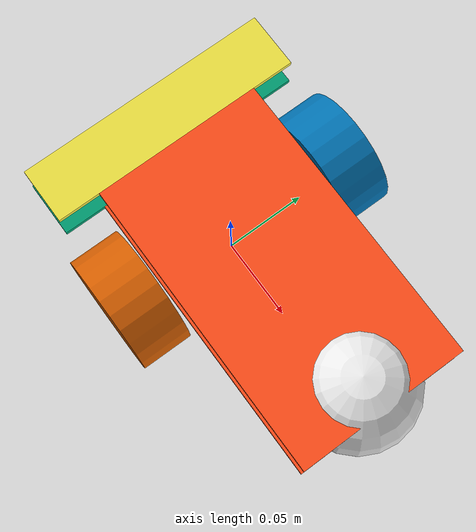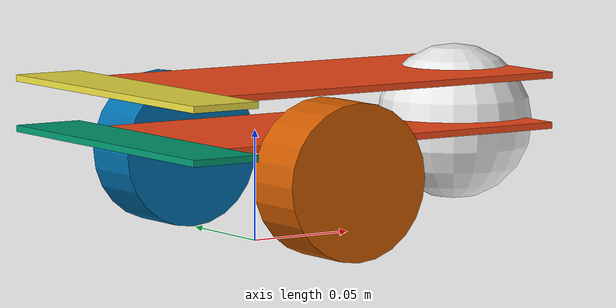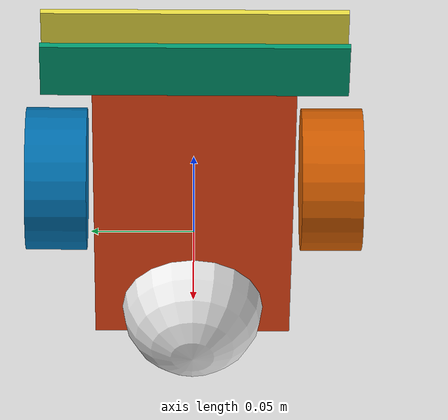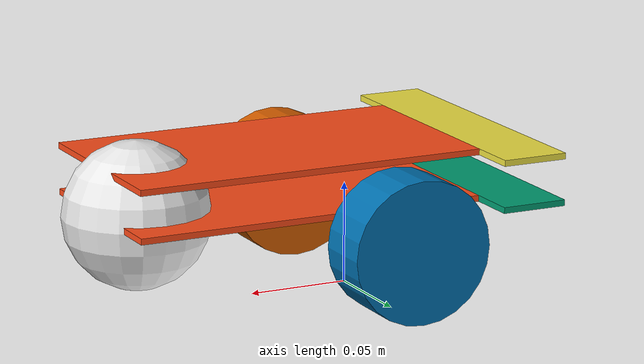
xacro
<?xml version="1.0"?>
<robot xmlns:xacro="http://www.ros.org/wiki/xacro" >

  <xacro:include filename="inertial_macros.xacro"/>

  <xacro:property name="chassis_length" value="0.176"/>
  <xacro:property name="chassis_width" value="0.1"/>
  <xacro:property name="chassis_thickness" value="0.003"/>
  <xacro:property name="chassis_tail_length" value="0.0330"/>
  <xacro:property name="chassis_tail_width" value="0.15"/>
  <xacro:property name="chassis_spacing" value="${0.02 + chassis_thickness}"/>
  <xacro:property name="chassis_base_link_offset_z" value="0.047"/>
  <xacro:property name="chassis_wheel_offset_x" value="0.08"/>

  <xacro:property name="wheel_radius" value="0.035"/>
  <xacro:property name="wheel_thickness" value="0.03"/>
  <xacro:property name="wheel_base_link_offset_y" value="0.0675"/>

  <xacro:property name="wheel_mass" value="0.036"/>

  <xacro:property name="caster_wheel_radius" value="0.036"/>
  <xacro:property name="caster_wheel_mass" value="0.036"/>

  <material name="orange">
    <color rgba="1 0.3 0.1 1"/>
  </material>

  <link name="base_link"> </link>

  <!-- BASE_FOOTPRINT LINK -->
  <joint name="base_footprint_joint" type="fixed">
    <parent link="base_link"/>
    <child link="base_footprint"/>
    <origin xyz="0 0 0" rpy="0 0 0"/>
  </joint>

  <link name="base_footprint"> </link>

  <!-- CHASSIS LINK -->
  <joint name="chassis_lower_joint" type="fixed">
    <parent link="base_link"/>
    <child link="chassis_lower"/>
    <origin xyz="${-chassis_wheel_offset_x} 0 ${chassis_base_link_offset_z}"/>
  </joint>

  <link name="chassis_lower">
    <visual>
      <origin xyz="${chassis_tail_length / 2} 0 ${chassis_thickness / 2}"/>
        <!-- TAIL PART -->
        <geometry>
          <box size="${chassis_tail_length} ${chassis_tail_width} ${chassis_thickness}"/>
        </geometry>
    </visual>
    <visual>
      <origin xyz="${chassis_length / 2 + chassis_tail_length} 0 ${chassis_thickness / 2}"/>
        <!-- MAIN PART -->
        <geometry>
          <box size="${chassis_length} ${chassis_width} ${chassis_thickness}"/>
        </geometry>
        <material name="orange"/>
    </visual>

    <collision>
      <origin xyz="${chassis_tail_length / 2} 0 ${chassis_thickness / 2}"/>
        <!-- TAIL PART -->
        <geometry>
          <box size="${chassis_tail_length} ${chassis_tail_width} ${chassis_thickness}"/>
        </geometry>
    </collision>
    <collision>
      <origin xyz="${chassis_length / 2 + chassis_tail_length} 0 ${chassis_thickness / 2}"/>
        <!-- MAIN PART -->
        <geometry>
          <box size="${chassis_length} ${chassis_width} ${chassis_thickness}"/>
        </geometry>
    </collision>

    <xacro:inertial_box mass="0.5" x="${chassis_length + chassis_tail_length}" y="${chassis_tail_width}" z="${chassis_thickness}">
      <origin xyz="${(chassis_length + chassis_tail_length) / 2} 0 ${chassis_thickness/2}" rpy="0 0 0"/>
    </xacro:inertial_box>
  </link>

  <joint name="chassis_middle_joint" type="fixed">
    <parent link="chassis_lower"/>
    <child link="chassis_middle"/>
    <origin xyz="0 0 ${chassis_spacing}"/>
  </joint>

  <link name="chassis_middle">
    <visual>
      <origin xyz="${chassis_tail_length / 2} 0 ${chassis_thickness / 2}"/>
        <!-- TAIL PART -->
        <geometry>
          <box size="${chassis_tail_length} ${chassis_tail_width} ${chassis_thickness}"/>
        </geometry>
    </visual>
    <visual>
      <origin xyz="${chassis_length / 2 + chassis_tail_length} 0 ${chassis_thickness / 2}"/>
        <!-- MAIN PART -->
        <geometry>
          <box size="${chassis_length} ${chassis_width} ${chassis_thickness}"/>
        </geometry>
        <material name="orange"/>
    </visual>
  </link>

  <!-- WHEELS LINK -->
  <joint name="left_wheel_joint" type="continuous">
    <parent link="base_link"/>
    <child link="left_wheel"/>
    <origin xyz="0 ${wheel_base_link_offset_y} ${wheel_radius}" rpy="-${pi/2} 0 0" />
    <axis xyz="0 0 1"/>
  </joint>

  <link name="left_wheel">
    <visual>
      <geometry>
        <cylinder radius="${wheel_radius}" length="${wheel_thickness}"/>
      </geometry>
    </visual>
    <collision>
      <geometry>
        <cylinder radius="${wheel_radius}" length="${wheel_thickness}"/>
      </geometry>
    </collision>
  </link>

  <joint name="right_wheel_joint" type="continuous">
    <parent link="base_link"/>
    <child link="right_wheel"/>
    <origin xyz="0 ${-wheel_base_link_offset_y} ${wheel_radius}" rpy="${pi/2} 0 0" />
    <axis xyz="0 0 1"/>
  </joint>

  <link name="right_wheel">
    <visual>
      <geometry>
        <cylinder radius="${wheel_radius}" length="${wheel_thickness}"/>
      </geometry>
    </visual>
    <collision>
      <geometry>
        <cylinder radius="${wheel_radius}" length="${wheel_thickness}"/>
      </geometry>
    </collision>
  </link>

  <joint name="caster_wheel_joint" type="fixed">
    <parent link="base_link"/>
    <child link="caster_wheel"/>
    <origin xyz="${-chassis_wheel_offset_x + 0.19} 0 ${chassis_base_link_offset_z}"/>
  </joint>

  <link name="caster_wheel">
    <visual>
      <geometry>
        <sphere radius="${caster_wheel_radius}"/>
      </geometry>
      <material name="white"/>
    </visual>
    <collision>
      <geometry>
        <sphere radius="${caster_wheel_radius}"/>
      </geometry>
    </collision>
  </link>

</robot>
